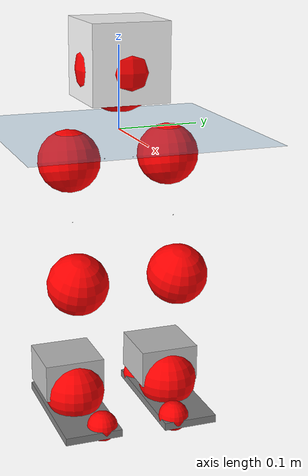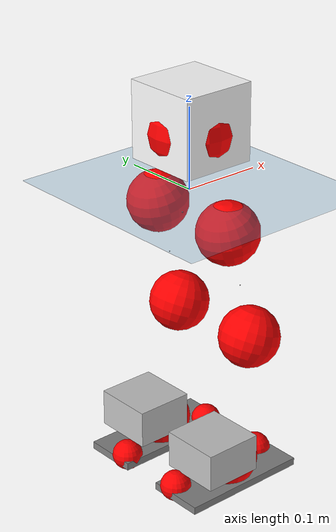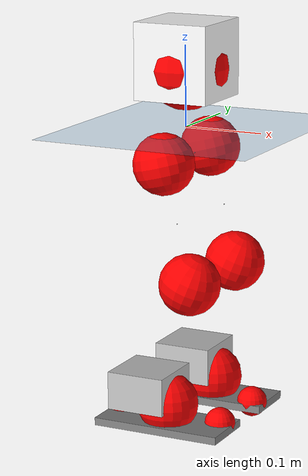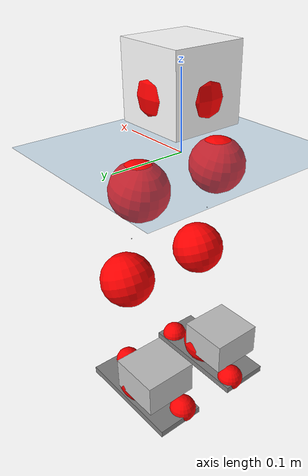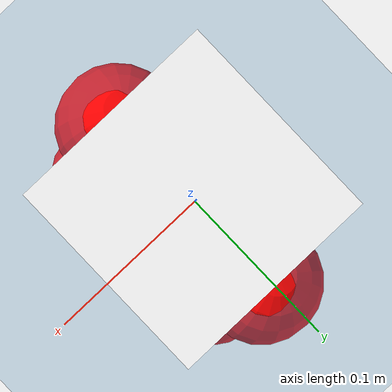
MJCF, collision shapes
<mujoco model="pi_12dof_release_v1">
  <compiler angle="radian" assetdir="assets" balanceinertia="true" inertiafromgeom="false"/>

  <option timestep="0.005" density="1.2" viscosity="2e-05"/>

  <size nkey="1"/>

  <visual>
    <quality shadowsize="8192"/>
    <map shadowclip="0.5"/>
  </visual>

  <default>
    <default class="/">
      <joint armature="0.01" damping="0.01" frictionloss="0.01"/>
      <geom contype="0" conaffinity="0" group="1" solref="-1000 -80"/>
      <site size="0.01 0.005 0.005" group="5"/>
      <general forcelimited="true" biastype="affine" gainprm="20" biasprm="0 -20 -0.5"/>
      <default class="foot">
        <geom size="0.0845 0.036 0.005" type="box" condim="6" group="4" priority="1" friction="0.9 0.2 0.2" solimp="0.015 1 0.005"/>
      </default>
      <default class="reward_collision_sphere">
        <geom group="5" rgba="1 0 0 1"/>
      </default>
    </default>
  </default>

  <asset>
    <texture type="skybox" colorspace="auto" name="//unnamed_texture_0" builtin="gradient" rgb1="0.95 0.95 0.95" rgb2="0.95 0.95 0.95" width="100" height="600"/>
    <texture type="2d" colorspace="auto" name="texplane" builtin="checker" rgb1="0.345 0.575 0.748" rgb2="0.345 0.575 0.748" markrgb="1 1 1" width="512" height="512"/>
    <material name="MatPlane" class="/" texture="texplane" texuniform="true" texrepeat="2 2" specular="0.9"/>
    <mesh name="baselink_1" class="/" file="baselink_1.STL"/>
    <mesh name="r_hip_pitch_link" class="/" file="r_hip_pitch_link.STL"/>
    <mesh name="r_hip_roll_link" class="/" file="r_hip_roll_link.STL"/>
    <mesh name="r_thigh_link" class="/" file="r_thigh_link.STL"/>
    <mesh name="r_calf_link" class="/" file="r_calf_link.STL"/>
    <mesh name="r_ankle_pitch_link" class="/" file="r_ankle_pitch_link.STL"/>
    <mesh name="r_ankle_roll_link" class="/" file="r_ankle_roll_link.STL"/>
    <mesh name="l_hip_pitch_link" class="/" file="l_hip_pitch_link.STL"/>
    <mesh name="l_hip_roll_link" class="/" file="l_hip_roll_link.STL"/>
    <mesh name="l_thigh_link" class="/" file="l_thigh_link.STL"/>
    <mesh name="l_calf_link" class="/" file="l_calf_link.STL"/>
    <mesh name="l_ankle_pitch_link" class="/" file="l_ankle_pitch_link.STL"/>
    <mesh name="l_ankle_roll_link" class="/" file="l_ankle_roll_link.STL"/>
  </asset>

  <worldbody>
    <geom name="floor" class="/" size="100 100 0.125" type="plane" group="0" material="MatPlane"/>
    <light name="toplight_shadow" class="/" pos="0 0 5" dir="0.0990148 0.0990148 -0.990148" type="directional" ambient="0.04 0.04 0.04" diffuse="0.55 0.55 0.55" specular="0.12 0.12 0.12"/>
    <light name="toplight_fill" class="/" pos="0 0 5" dir="0.0990148 0.0990148 -0.990148" type="directional" castshadow="false" ambient="0.04 0.04 0.04" diffuse="0.3 0.3 0.3" specular="0.08 0.08 0.08"/>
    <body name="trunk" pos="0.0017884 -0.0010275 -0.000459633" quat="1 4.32285e-05 -0.000232084 0.000140118">
      <inertial pos="0.00235107 0.000212748 0.0424532" quat="0.695958 0.0120645 0.0102763 0.717908" mass="1.80938" diaginertia="0.00884797 0.0031736 0.00546991"/>
      <joint name="//unnamed_joint_0" type="free"/>
      <geom name="//unnamed_geom_1" class="/" type="mesh" density="0" rgba="1 1 1 1" mesh="baselink_1"/>
      <geom name="//unnamed_geom_2" class="/" size="0.0472815 0.0472815 0.0472815" pos="0 0 0.0844244" type="box" rgba="1 1 1 1"/>
      <geom name="//unnamed_geom_3" class="reward_collision_sphere" size="0.0520096" pos="0 0 0.0738713"/>
      <site name="imu" class="/" pos="-0.00383305 -0.00191115 -0.0112152" size="0.00945629"/>
      <camera name="track" class="/" pos="0 -1.61821 0" quat="0.707107 0.707107 0 0" mode="trackcom"/>
      <camera name="ego_camera" class="/" pos="0.0729359 0 0.189955" quat="-0.5 -0.5 0.5 0.5"/>
      <body name="r_hip_pitch_link" pos="0.000929893 -0.0182314 -0.0343043" quat="0.992091 -0.000288774 -0.125519 0.00014425">
        <inertial pos="-0.000974049 -0.0448435 0.000132851" quat="-0.0188813 0.706279 -0.0283315 0.707115" mass="0.314315" diaginertia="9.47578e-05 3.3754e-05 0.000108119"/>
        <joint name="r_hip_pitch_joint" class="/" pos="0 0 0" axis="-0.00913443 -0.99993 0.00747447" stiffness="0.000664635" range="-1.70663 1.25403" armature="0.00947424" damping="0.0234096" frictionloss="0.00951442"/>
        <geom name="//unnamed_geom_4" class="/" type="mesh" density="0" rgba="0.75294 0.75294 0.75294 1" mesh="r_hip_pitch_link"/>
        <geom name="//unnamed_geom_5" class="/" size="0.000472815 0.000472815 0.000472815" type="box" rgba="0.75294 0.75294 0.75294 1"/>
        <body name="r_hip_roll_link" pos="-0.000199748 -0.0445575 0.000636244" quat="1 -0.000206782 0.000226209 8.77502e-05">
          <inertial pos="-0.0014204 2.23846e-05 -0.0672415" quat="0.70425 -0.081973 -0.0805801 0.700585" mass="0.333497" diaginertia="0.000293616 9.7615e-05 0.000170668"/>
          <joint name="r_hip_roll_joint" class="/" pos="0 0 0" axis="-0.999979 0.00335686 0.00553654" stiffness="0.000276398" range="-0.114012 0.528961" armature="0.00905579" damping="0.00807854" frictionloss="0.00915326"/>
          <geom name="//unnamed_geom_6" class="/" type="mesh" density="0" rgba="0.75294 0.75294 0.75294 1" mesh="r_hip_roll_link"/>
          <geom name="//unnamed_geom_7" class="/" size="0.000472815 0.000472815 0.000472815" type="box" rgba="0.75294 0.75294 0.75294 1"/>
          <geom name="//unnamed_geom_8" class="reward_collision_sphere" size="0.0378252"/>
          <body name="r_thigh_link" pos="0.000164817 -0.00170881 -0.0732308" quat="1 0.000327017 4.39795e-05 1.1777e-05">
            <inertial pos="-0.000367416 0.00188617 -0.0502434" quat="0.738833 0.673812 0.00970146 -0.00287764" mass="0.0949678" diaginertia="0.000107294 3.28134e-05 7.43047e-05"/>
            <joint name="r_thigh_joint" class="/" pos="0 0 0" axis="-0.00182389 -0.00112801 -0.999998" range="-0.289784 0.637393" armature="0.00945498" damping="0.00496373" frictionloss="0.00985934"/>
            <geom name="//unnamed_geom_9" class="/" type="mesh" density="0" rgba="0.75294 0.75294 0.75294 1" mesh="r_thigh_link"/>
            <geom name="//unnamed_geom_10" class="/" size="0.000472815 0.000472815 0.000472815" type="box" rgba="0.75294 0.75294 0.75294 1"/>
            <body name="r_calf_link" pos="-0.0023161 0.000370832 -0.0753531" quat="0.947642 -0.000158504 0.319336 -0.000219442">
              <inertial pos="0.00184922 -0.00172443 -0.075814" quat="0.999985 -0.00320414 0.000408274 0.00441422" mass="0.709676" diaginertia="0.00313292 0.00124328 0.000234413"/>
              <joint name="r_calf_joint" class="/" pos="0 0 0" axis="0.00783081 -0.999949 -0.00632441" range="-1.66198 0.647941" armature="0.00916979" damping="0.0102911" frictionloss="0.00938152"/>
              <geom name="//unnamed_geom_11" class="/" type="mesh" density="0" rgba="0.75294 0.75294 0.75294 1" mesh="r_calf_link"/>
              <geom name="//unnamed_geom_12" class="/" size="0.000472815 0.000472815 0.000472815" type="box" rgba="0.75294 0.75294 0.75294 1"/>
              <geom name="//unnamed_geom_13" class="reward_collision_sphere" size="0.0378252"/>
              <body name="r_ankle_pitch_link" pos="0.000771658 0.001228 -0.147728" quat="0.980064 3.08489e-05 -0.198683 2.65795e-05">
                <inertial pos="0.00529665 0.00543173 -0.000813736" quat="0.00235697 0.706931 -0.00200648 0.707276" mass="0.146932" diaginertia="0.000266064 7.61276e-05 0.000154907"/>
                <joint name="r_ankle_pitch_joint" class="/" pos="0 0 0" axis="0.00180119 -0.999997 0.00164093" range="-1.31869 0.50153" armature="0.00882914" damping="0.00489315" frictionloss="0.00918539"/>
                <geom name="//unnamed_geom_14" class="/" type="mesh" density="0" rgba="0.75294 0.75294 0.75294 1" mesh="r_ankle_pitch_link"/>
                <geom name="//unnamed_geom_15" class="/" size="0.0368795 0.0378252 0.0236407" type="box" rgba="0.75294 0.75294 0.75294 1"/>
                <body name="r_ankle_roll_link" pos="0.0737396 0.00227669 0.00179648" quat="0.999999 0.00104941 0.000533162 0.000277242">
                  <inertial pos="-0.0208157 0.000125878 -0.0140453" quat="0.559914 0.430683 0.434135 0.559049" mass="0.429386" diaginertia="0.000973092 0.000363411 0.000380295"/>
                  <joint name="r_ankle_roll_joint" class="/" pos="0 0 0" axis="-0.999942 0.01054 -0.00230874" range="-0.14819 0.145227" armature="0.00913748" damping="0.0175947" frictionloss="0.00935183"/>
                  <geom name="//unnamed_geom_16" class="/" type="mesh" density="0" rgba="0.75294 0.75294 0.75294 1" mesh="r_ankle_roll_link"/>
                  <geom name="//unnamed_geom_17" class="/" type="mesh" rgba="0.75294 0.75294 0.75294 1" mesh="r_ankle_roll_link"/>
                  <geom name="right_foot" class="foot" size="0.0821532 0.0358539 0.00477903" pos="-0.0495964 0 -0.0464334"/>
                  <geom name="//unnamed_geom_19" class="reward_collision_sphere" size="0.0378252" pos="-0.0486239 0 -0.0211061"/>
                  <geom name="//unnamed_geom_20" class="reward_collision_sphere" size="0.0189126" pos="0.0145872 0.0161821 -0.0422122"/>
                  <geom name="//unnamed_geom_21" class="reward_collision_sphere" size="0.0189126" pos="-0.116697 0.0161821 -0.0422122"/>
                  <site name="right_foot" class="foot" pos="-0.0495964 0 -0.0464334" size="0.00945629"/>
                </body>
              </body>
            </body>
          </body>
        </body>
      </body>
      <body name="l_hip_pitch_link" pos="0.00215627 0.0178343 -0.0347052" quat="0.992199 3.24389e-05 -0.124664 1.23006e-06">
        <inertial pos="0.00295483 0.0410851 -0.000166569" quat="-0.0320971 0.70888 0.0315381 0.703892" mass="0.332247" diaginertia="0.000112487 3.63707e-05 0.000129125"/>
        <joint name="l_hip_pitch_joint" class="/" pos="0 0 0" axis="0.0103773 0.999942 0.00304723" range="-1.28694 1.75727" armature="0.00838926" damping="0.00950245" frictionloss="0.00909982"/>
        <geom name="//unnamed_geom_22" class="/" type="mesh" density="0" rgba="0.75294 0.75294 0.75294 1" mesh="l_hip_pitch_link"/>
        <geom name="//unnamed_geom_23" class="/" size="0.000472815 0.000472815 0.000472815" type="box" rgba="0.75294 0.75294 0.75294 1"/>
        <body name="l_hip_roll_link" pos="0.000466733 0.0446699 0.000585379" quat="1 0.000461002 0.000207505 0.000202418">
          <inertial pos="-0.00236545 0.00223436 -0.064535" quat="0.70168 -0.0715997 -0.0771539 0.704674" mass="0.329843" diaginertia="0.000290912 9.74418e-05 0.000164413"/>
          <joint name="l_hip_roll_joint" class="/" pos="0 0 0" axis="-0.999987 -0.000147007 0.00504519" range="-0.508294 0.0979786" armature="0.0101203" damping="0.00151071" frictionloss="0.00960763"/>
          <geom name="//unnamed_geom_24" class="/" type="mesh" density="0" rgba="0.75294 0.75294 0.75294 1" mesh="l_hip_roll_link"/>
          <geom name="//unnamed_geom_25" class="/" size="0.000472815 0.000472815 0.000472815" type="box" rgba="0.75294 0.75294 0.75294 1"/>
          <geom name="//unnamed_geom_26" class="reward_collision_sphere" size="0.0378252"/>
          <body name="l_thigh_link" pos="1.48046e-05 0.00108668 -0.0755958" quat="0.999999 -0.00018726 0.000823828 0.00078511">
            <inertial pos="0.000569019 -0.0014921 -0.0478093" quat="0.674314 0.738442 0.0018084 -0.000778002" mass="0.092952" diaginertia="0.000108949 3.31698e-05 7.55577e-05"/>
            <joint name="l_thigh_joint" class="/" pos="0 0 0" axis="0.00429748 0.00302673 -0.999986" range="-0.6444 0.288251" armature="0.00947132" damping="0" frictionloss="0.00971641"/>
            <geom name="//unnamed_geom_27" class="/" type="mesh" density="0" rgba="0.75294 0.75294 0.75294 1" mesh="l_thigh_link"/>
            <geom name="//unnamed_geom_28" class="/" size="0.000472815 0.000472815 0.000472815" type="box" rgba="0.75294 0.75294 0.75294 1"/>
            <body name="l_calf_link" pos="-0.00271896 3.36263e-05 -0.0734192" quat="0.947542 -0.000378935 0.319631 0.0002296">
              <inertial pos="0.000800929 0.00170254 -0.0735877" quat="0.999938 0.00643884 0.0091045 -0.000253852" mass="0.689099" diaginertia="0.00305128 0.00121637 0.000228451"/>
              <joint name="l_calf_joint" class="/" pos="0 0 0" axis="-0.00657338 0.999947 0.00796635" stiffness="0.00228162" range="-0.64059 1.63255" armature="0.00956567" damping="0.0101805" frictionloss="0.0087924"/>
              <geom name="//unnamed_geom_29" class="/" type="mesh" density="0" rgba="0.75294 0.75294 0.75294 1" mesh="l_calf_link"/>
              <geom name="//unnamed_geom_30" class="/" size="0.000472815 0.000472815 0.000472815" type="box" rgba="0.75294 0.75294 0.75294 1"/>
              <geom name="//unnamed_geom_31" class="reward_collision_sphere" size="0.0378252"/>
              <body name="l_ankle_pitch_link" pos="0.000395109 0.000700789 -0.146181" quat="0.980099 -0.00025263 -0.19851 0.000355051">
                <inertial pos="0.00371033 -0.00127513 -0.000744331" quat="-0.00371577 0.711019 0.0128588 0.703046" mass="0.149262" diaginertia="0.000266365 7.79222e-05 0.000161002"/>
                <joint name="l_ankle_pitch_joint" class="/" pos="0 0 0" axis="-0.00181115 0.999984 -0.00537466" range="-0.502883 1.30662" armature="0.00987466" damping="0" frictionloss="0.00940497"/>
                <geom name="//unnamed_geom_32" class="/" type="mesh" density="0" rgba="0.75294 0.75294 0.75294 1" mesh="l_ankle_pitch_link"/>
                <geom name="//unnamed_geom_33" class="/" size="0.0368795 0.0378252 0.0236407" type="box" rgba="0.75294 0.75294 0.75294 1"/>
                <body name="l_ankle_roll_link" pos="0.0741405 0.000771283 -0.000141717" quat="1 -0.000135476 4.79365e-05 -4.18508e-05">
                  <inertial pos="-0.0259063 -0.00274871 -0.0131909" quat="0.558552 0.430861 0.435148 0.559486" mass="0.443485" diaginertia="0.00097413 0.000362183 0.000368866"/>
                  <joint name="l_ankle_roll_joint" class="/" pos="0 0 0" axis="-0.999992 0.000654858 0.00388151" stiffness="0.00372728" range="-0.161144 0.152605" armature="0.00962642" damping="0.0174527" frictionloss="0.0102602"/>
                  <geom name="//unnamed_geom_34" class="/" type="mesh" density="0" rgba="0.75294 0.75294 0.75294 1" mesh="l_ankle_roll_link"/>
                  <geom name="//unnamed_geom_35" class="/" type="mesh" rgba="0.75294 0.75294 0.75294 1" mesh="l_ankle_roll_link"/>
                  <geom name="left_foot" class="foot" size="0.0818804 0.0342233 0.00484305" pos="-0.0495964 0 -0.0464334"/>
                  <geom name="//unnamed_geom_37" class="reward_collision_sphere" size="0.0378252" pos="-0.0486239 0 -0.0211061"/>
                  <geom name="//unnamed_geom_38" class="reward_collision_sphere" size="0.0189126" pos="0.0145872 -0.0161821 -0.0422122"/>
                  <geom name="//unnamed_geom_39" class="reward_collision_sphere" size="0.0189126" pos="-0.116697 -0.0161821 -0.0422122"/>
                  <site name="left_foot" class="foot" pos="-0.0495964 0 -0.0464334" size="0.00945629"/>
                </body>
              </body>
            </body>
          </body>
        </body>
      </body>
    </body>
  </worldbody>

  <contact>
    <pair class="/" geom1="floor" geom2="right_foot" name="//unnamed_contact_1"/>
    <pair class="/" geom1="floor" geom2="left_foot" name="//unnamed_contact_0"/>
  </contact>

  <actuator>
    <general name="r_hip_pitch_joint" class="/" joint="r_hip_pitch_joint" forcerange="-19.1927 19.1927" gainprm="19.2264" biasprm="0 -19.2264 -0.465858"/>
    <general name="r_hip_roll_joint" class="/" joint="r_hip_roll_joint" forcerange="-21.3246 21.3246" gainprm="19.2264" biasprm="0 -19.2264 -0.465858"/>
    <general name="r_thigh_joint" class="/" joint="r_thigh_joint" forcerange="-20.6567 20.6567" gainprm="19.2264" biasprm="0 -19.2264 -0.465858"/>
    <general name="r_calf_joint" class="/" joint="r_calf_joint" forcerange="-21.5356 21.5356" gainprm="19.2264" biasprm="0 -19.2264 -0.465858"/>
    <general name="r_ankle_pitch_joint" class="/" joint="r_ankle_pitch_joint" forcerange="-20.3759 20.3759" gainprm="19.2264" biasprm="0 -19.2264 -0.465858"/>
    <general name="r_ankle_roll_joint" class="/" joint="r_ankle_roll_joint" forcerange="-19.1886 19.1886" gainprm="19.2264" biasprm="0 -19.2264 -0.465858"/>
    <general name="l_hip_pitch_joint" class="/" joint="l_hip_pitch_joint" forcerange="-19.9571 19.9571" gainprm="19.2264" biasprm="0 -19.2264 -0.465858"/>
    <general name="l_hip_roll_joint" class="/" joint="l_hip_roll_joint" forcerange="-18.8297 18.8297" gainprm="19.2264" biasprm="0 -19.2264 -0.465858"/>
    <general name="l_thigh_joint" class="/" joint="l_thigh_joint" forcerange="-19.1318 19.1318" gainprm="19.2264" biasprm="0 -19.2264 -0.465858"/>
    <general name="l_calf_joint" class="/" joint="l_calf_joint" forcerange="-19.8161 19.8161" gainprm="19.2264" biasprm="0 -19.2264 -0.465858"/>
    <general name="l_ankle_pitch_joint" class="/" joint="l_ankle_pitch_joint" forcerange="-20.2092 20.2092" gainprm="19.2264" biasprm="0 -19.2264 -0.465858"/>
    <general name="l_ankle_roll_joint" class="/" joint="l_ankle_roll_joint" forcerange="-19.6758 19.6758" gainprm="19.2264" biasprm="0 -19.2264 -0.465858"/>
  </actuator>

  <sensor>
    <gyro site="imu" name="imu_angular_velocity"/>
    <velocimeter site="imu" name="imu_linear_velocity"/>
    <framelinvel objtype="site" objname="left_foot" name="left_foot_global_linear_velocity"/>
    <framelinvel objtype="site" objname="right_foot" name="right_foot_global_linear_velocity"/>
  </sensor>

  <keyframe>
    <key name="home" qpos="0 0 0.291 1 0 0 0 0.4 0 0 -0.8 0.4 0 -0.4 0 0 0.8 -0.4 0"/>
  </keyframe>
</mujoco>
